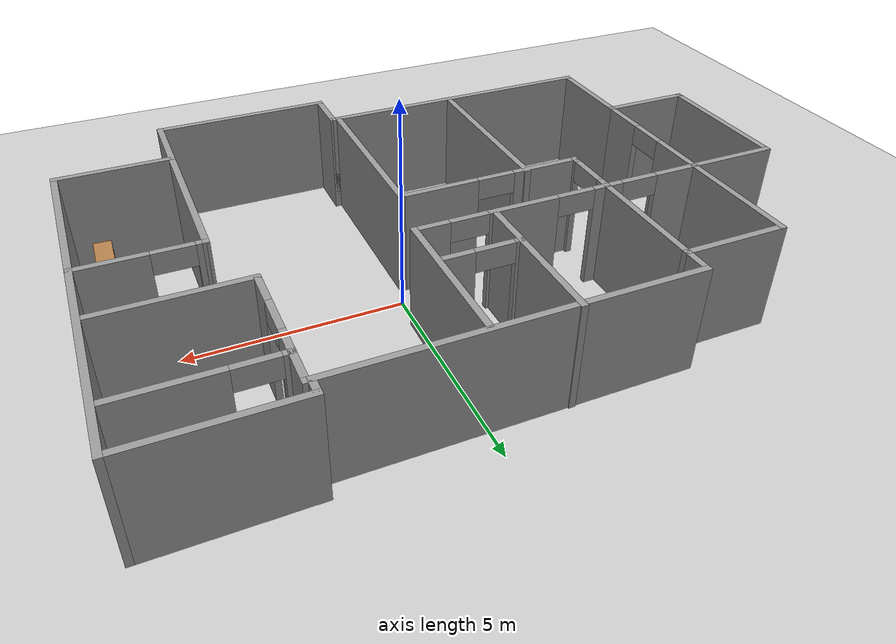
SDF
<sdf version="1.7">
 <world name="default">
  <light name="sun" type="directional">
   <pose>0 0 10 0 -0 0</pose>
   <diffuse>0.8 0.8 0.8 1</diffuse>
   <specular>0.2 0.2 0.2 1</specular>
   <attenuation>
    <range>1000</range>
    <constant>0.9</constant>
    <linear>0.01</linear>
    <quadratic>0.001</quadratic>
   </attenuation>
   <direction>-0.5 0.1 -0.9</direction>
   <spot><inner_angle>0</inner_angle><outer_angle>0</outer_angle><falloff>0</falloff></spot>
  </light>
  <model name="ground_plane">
   <static>1</static>
   <link name="link">
    <collision name="collision">
     <geometry><plane><normal>0 0 1</normal><size>100 100</size></plane></geometry>
     <surface>
      <contact><collide_bitmask>65535</collide_bitmask></contact>
      <friction><ode><mu>100</mu><mu2>50</mu2></ode></friction>
     </surface>
    </collision>
    <visual name="visual">
     <cast_shadows>0</cast_shadows>
     <geometry><plane><normal>0 0 1</normal><size>100 100</size></plane></geometry>
     <material>
      <script><uri>file://media/materials/scripts/gazebo.material</uri><name>Gazebo/Grey</name></script>
     </material>
    </visual>
   </link>
  </model>
  <gravity>0 0 -9.8</gravity>
  <magnetic_field>6e-06 2.3e-05 -4.2e-05</magnetic_field>
  <atmosphere type="adiabatic"/>
  <physics type="ode">
   <max_step_size>0.001</max_step_size>
   <real_time_factor>1</real_time_factor>
   <real_time_update_rate>1000</real_time_update_rate>
  </physics>
  <scene><ambient>0.4 0.4 0.4 1</ambient><background>0.7 0.7 0.7 1</background><shadows>1</shadows></scene>
  <spherical_coordinates>
   <surface_model>EARTH_WGS84</surface_model>
   <latitude_deg>0</latitude_deg>
   <longitude_deg>0</longitude_deg>
   <elevation>0</elevation>
   <heading_deg>0</heading_deg>
  </spherical_coordinates>
  <model name="Bookshelf_clone">
   <static>1</static>
   <link name="link">
    <inertial><mass>1</mass></inertial>
    <collision name="back">
     <pose>0 0.005 0.6 0 -0 0</pose>
     <geometry><box><size>0.9 0.01 1.2</size></box></geometry>
    </collision>
    <visual name="visual1">
     <pose>0 0.005 0.6 0 -0 0</pose>
     <geometry><box><size>0.9 0.01 1.2</size></box></geometry>
     <material>
      <diffuse>1 1 1 1</diffuse>
      <script><uri>file://media/materials/scripts/gazebo.material</uri><name>Gazebo/Wood</name></script>
      <pbr>
       <metal>
        <albedo_map>https://fuel.ignitionrobotics.org/1.0/openrobotics/models/bookshelf/3/files/bookshelf_diffuse.jpg</albedo_map>
       </metal>
      </pbr>
     </material>
    </visual>
    <collision name="left_side">
     <pose>0.45 -0.195 0.6 0 -0 0</pose>
     <geometry><box><size>0.02 0.4 1.2</size></box></geometry>
    </collision>
    <visual name="visual2">
     <pose>0.45 -0.195 0.6 0 -0 0</pose>
     <geometry><box><size>0.02 0.4 1.2</size></box></geometry>
     <material>
      <diffuse>1 1 1 1</diffuse>
      <script><uri>file://media/materials/scripts/gazebo.material</uri><name>Gazebo/Wood</name></script>
      <pbr>
       <metal>
        <albedo_map>https://fuel.ignitionrobotics.org/1.0/openrobotics/models/bookshelf/3/files/bookshelf_diffuse.jpg</albedo_map>
       </metal>
      </pbr>
     </material>
    </visual>
    <collision name="right_side">
     <pose>-0.45 -0.195 0.6 0 -0 0</pose>
     <geometry><box><size>0.02 0.4 1.2</size></box></geometry>
    </collision>
    <visual name="visual3">
     <pose>-0.45 -0.195 0.6 0 -0 0</pose>
     <geometry><box><size>0.02 0.4 1.2</size></box></geometry>
     <material>
      <diffuse>1 1 1 1</diffuse>
      <script><uri>file://media/materials/scripts/gazebo.material</uri><name>Gazebo/Wood</name></script>
      <pbr>
       <metal>
        <albedo_map>https://fuel.ignitionrobotics.org/1.0/openrobotics/models/bookshelf/3/files/bookshelf_diffuse.jpg</albedo_map>
       </metal>
      </pbr>
     </material>
    </visual>
    <collision name="bottom">
     <pose>0 -0.195 0.03 0 -0 0</pose>
     <geometry><box><size>0.88 0.4 0.06</size></box></geometry>
    </collision>
    <visual name="visual4">
     <pose>0 -0.195 0.03 0 -0 0</pose>
     <geometry><box><size>0.88 0.4 0.06</size></box></geometry>
     <material>
      <diffuse>1 1 1 1</diffuse>
      <script><uri>file://media/materials/scripts/gazebo.material</uri><name>Gazebo/Wood</name></script>
      <pbr>
       <metal>
        <albedo_map>https://fuel.ignitionrobotics.org/1.0/openrobotics/models/bookshelf/3/files/bookshelf_diffuse.jpg</albedo_map>
       </metal>
      </pbr>
     </material>
    </visual>
    <collision name="top">
     <pose>0 -0.195 1.19 0 -0 0</pose>
     <geometry><box><size>0.88 0.4 0.02</size></box></geometry>
    </collision>
    <visual name="visual5">
     <pose>0 -0.195 1.19 0 -0 0</pose>
     <geometry><box><size>0.88 0.4 0.02</size></box></geometry>
     <material>
      <diffuse>1 1 1 1</diffuse>
      <script><uri>file://media/materials/scripts/gazebo.material</uri><name>Gazebo/Wood</name></script>
      <pbr>
       <metal>
        <albedo_map>https://fuel.ignitionrobotics.org/1.0/openrobotics/models/bookshelf/3/files/bookshelf_diffuse.jpg</albedo_map>
       </metal>
      </pbr>
     </material>
    </visual>
    <collision name="low_shelf">
     <pose>0 -0.195 0.43 0 -0 0</pose>
     <geometry><box><size>0.88 0.4 0.02</size></box></geometry>
    </collision>
    <visual name="visual6">
     <pose>0 -0.195 0.43 0 -0 0</pose>
     <geometry><box><size>0.88 0.4 0.02</size></box></geometry>
     <material>
      <diffuse>1 1 1 1</diffuse>
      <script><uri>file://media/materials/scripts/gazebo.material</uri><name>Gazebo/Wood</name></script>
      <pbr>
       <metal>
        <albedo_map>https://fuel.ignitionrobotics.org/1.0/openrobotics/models/bookshelf/3/files/bookshelf_diffuse.jpg</albedo_map>
       </metal>
      </pbr>
     </material>
    </visual>
    <collision name="high_shelf">
     <pose>0 -0.195 0.8 0 -0 0</pose>
     <geometry><box><size>0.88 0.4 0.02</size></box></geometry>
    </collision>
    <visual name="visual7">
     <pose>0 -0.195 0.8 0 -0 0</pose>
     <geometry><box><size>0.88 0.4 0.02</size></box></geometry>
     <material>
      <diffuse>1 1 1 1</diffuse>
      <script><uri>file://media/materials/scripts/gazebo.material</uri><name>Gazebo/Wood</name></script>
      <pbr>
       <metal>
        <albedo_map>https://fuel.ignitionrobotics.org/1.0/openrobotics/models/bookshelf/3/files/bookshelf_diffuse.jpg</albedo_map>
       </metal>
      </pbr>
     </material>
    </visual>
   </link>
   <pose>6.51092 -1.05986 0 0 0 -1.5962</pose>
  </model>
  <model name="Bookshelf_clone_clone">
   <static>1</static>
   <link name="link">
    <inertial><mass>1</mass></inertial>
    <collision name="back">
     <pose>0 0.005 0.6 0 -0 0</pose>
     <geometry><box><size>0.9 0.01 1.2</size></box></geometry>
    </collision>
    <visual name="visual1">
     <pose>0 0.005 0.6 0 -0 0</pose>
     <geometry><box><size>0.9 0.01 1.2</size></box></geometry>
     <material>
      <diffuse>1 1 1 1</diffuse>
      <script><uri>file://media/materials/scripts/gazebo.material</uri><name>Gazebo/Wood</name></script>
      <pbr>
       <metal>
        <albedo_map>https://fuel.ignitionrobotics.org/1.0/openrobotics/models/bookshelf/3/files/bookshelf_diffuse.jpg</albedo_map>
       </metal>
      </pbr>
     </material>
    </visual>
    <collision name="left_side">
     <pose>0.45 -0.195 0.6 0 -0 0</pose>
     <geometry><box><size>0.02 0.4 1.2</size></box></geometry>
    </collision>
    <visual name="visual2">
     <pose>0.45 -0.195 0.6 0 -0 0</pose>
     <geometry><box><size>0.02 0.4 1.2</size></box></geometry>
     <material>
      <diffuse>1 1 1 1</diffuse>
      <script><uri>file://media/materials/scripts/gazebo.material</uri><name>Gazebo/Wood</name></script>
      <pbr>
       <metal>
        <albedo_map>https://fuel.ignitionrobotics.org/1.0/openrobotics/models/bookshelf/3/files/bookshelf_diffuse.jpg</albedo_map>
       </metal>
      </pbr>
     </material>
    </visual>
    <collision name="right_side">
     <pose>-0.45 -0.195 0.6 0 -0 0</pose>
     <geometry><box><size>0.02 0.4 1.2</size></box></geometry>
    </collision>
    <visual name="visual3">
     <pose>-0.45 -0.195 0.6 0 -0 0</pose>
     <geometry><box><size>0.02 0.4 1.2</size></box></geometry>
     <material>
      <diffuse>1 1 1 1</diffuse>
      <script><uri>file://media/materials/scripts/gazebo.material</uri><name>Gazebo/Wood</name></script>
      <pbr>
       <metal>
        <albedo_map>https://fuel.ignitionrobotics.org/1.0/openrobotics/models/bookshelf/3/files/bookshelf_diffuse.jpg</albedo_map>
       </metal>
      </pbr>
     </material>
    </visual>
    <collision name="bottom">
     <pose>0 -0.195 0.03 0 -0 0</pose>
     <geometry><box><size>0.88 0.4 0.06</size></box></geometry>
    </collision>
    <visual name="visual4">
     <pose>0 -0.195 0.03 0 -0 0</pose>
     <geometry><box><size>0.88 0.4 0.06</size></box></geometry>
     <material>
      <diffuse>1 1 1 1</diffuse>
      <script><uri>file://media/materials/scripts/gazebo.material</uri><name>Gazebo/Wood</name></script>
      <pbr>
       <metal>
        <albedo_map>https://fuel.ignitionrobotics.org/1.0/openrobotics/models/bookshelf/3/files/bookshelf_diffuse.jpg</albedo_map>
       </metal>
      </pbr>
     </material>
    </visual>
    <collision name="top">
     <pose>0 -0.195 1.19 0 -0 0</pose>
     <geometry><box><size>0.88 0.4 0.02</size></box></geometry>
    </collision>
    <visual name="visual5">
     <pose>0 -0.195 1.19 0 -0 0</pose>
     <geometry><box><size>0.88 0.4 0.02</size></box></geometry>
     <material>
      <diffuse>1 1 1 1</diffuse>
      <script><uri>file://media/materials/scripts/gazebo.material</uri><name>Gazebo/Wood</name></script>
      <pbr>
       <metal>
        <albedo_map>https://fuel.ignitionrobotics.org/1.0/openrobotics/models/bookshelf/3/files/bookshelf_diffuse.jpg</albedo_map>
       </metal>
      </pbr>
     </material>
    </visual>
    <collision name="low_shelf">
     <pose>0 -0.195 0.43 0 -0 0</pose>
     <geometry><box><size>0.88 0.4 0.02</size></box></geometry>
    </collision>
    <visual name="visual6">
     <pose>0 -0.195 0.43 0 -0 0</pose>
     <geometry><box><size>0.88 0.4 0.02</size></box></geometry>
     <material>
      <diffuse>1 1 1 1</diffuse>
      <script><uri>file://media/materials/scripts/gazebo.material</uri><name>Gazebo/Wood</name></script>
      <pbr>
       <metal>
        <albedo_map>https://fuel.ignitionrobotics.org/1.0/openrobotics/models/bookshelf/3/files/bookshelf_diffuse.jpg</albedo_map>
       </metal>
      </pbr>
     </material>
    </visual>
    <collision name="high_shelf">
     <pose>0 -0.195 0.8 0 -0 0</pose>
     <geometry><box><size>0.88 0.4 0.02</size></box></geometry>
    </collision>
    <visual name="visual7">
     <pose>0 -0.195 0.8 0 -0 0</pose>
     <geometry><box><size>0.88 0.4 0.02</size></box></geometry>
     <material>
      <diffuse>1 1 1 1</diffuse>
      <script><uri>file://media/materials/scripts/gazebo.material</uri><name>Gazebo/Wood</name></script>
      <pbr>
       <metal>
        <albedo_map>https://fuel.ignitionrobotics.org/1.0/openrobotics/models/bookshelf/3/files/bookshelf_diffuse.jpg</albedo_map>
       </metal>
      </pbr>
     </material>
    </visual>
   </link>
   <pose>6.18658 -1.98511 0 0 0 -1.5962</pose>
  </model>
  <model name="Bookshelf_clone_clone_0">
   <static>1</static>
   <link name="link">
    <inertial><mass>1</mass></inertial>
    <collision name="back">
     <pose>0 0.005 0.6 0 -0 0</pose>
     <geometry><box><size>0.9 0.01 1.2</size></box></geometry>
    </collision>
    <visual name="visual1">
     <pose>0 0.005 0.6 0 -0 0</pose>
     <geometry><box><size>0.9 0.01 1.2</size></box></geometry>
     <material>
      <diffuse>1 1 1 1</diffuse>
      <script><uri>file://media/materials/scripts/gazebo.material</uri><name>Gazebo/Wood</name></script>
      <pbr>
       <metal>
        <albedo_map>https://fuel.ignitionrobotics.org/1.0/openrobotics/models/bookshelf/3/files/bookshelf_diffuse.jpg</albedo_map>
       </metal>
      </pbr>
     </material>
    </visual>
    <collision name="left_side">
     <pose>0.45 -0.195 0.6 0 -0 0</pose>
     <geometry><box><size>0.02 0.4 1.2</size></box></geometry>
    </collision>
    <visual name="visual2">
     <pose>0.45 -0.195 0.6 0 -0 0</pose>
     <geometry><box><size>0.02 0.4 1.2</size></box></geometry>
     <material>
      <diffuse>1 1 1 1</diffuse>
      <script><uri>file://media/materials/scripts/gazebo.material</uri><name>Gazebo/Wood</name></script>
      <pbr>
       <metal>
        <albedo_map>https://fuel.ignitionrobotics.org/1.0/openrobotics/models/bookshelf/3/files/bookshelf_diffuse.jpg</albedo_map>
       </metal>
      </pbr>
     </material>
    </visual>
    <collision name="right_side">
     <pose>-0.45 -0.195 0.6 0 -0 0</pose>
     <geometry><box><size>0.02 0.4 1.2</size></box></geometry>
    </collision>
    <visual name="visual3">
     <pose>-0.45 -0.195 0.6 0 -0 0</pose>
     <geometry><box><size>0.02 0.4 1.2</size></box></geometry>
     <material>
      <diffuse>1 1 1 1</diffuse>
      <script><uri>file://media/materials/scripts/gazebo.material</uri><name>Gazebo/Wood</name></script>
      <pbr>
       <metal>
        <albedo_map>https://fuel.ignitionrobotics.org/1.0/openrobotics/models/bookshelf/3/files/bookshelf_diffuse.jpg</albedo_map>
       </metal>
      </pbr>
     </material>
    </visual>
    <collision name="bottom">
     <pose>0 -0.195 0.03 0 -0 0</pose>
     <geometry><box><size>0.88 0.4 0.06</size></box></geometry>
    </collision>
    <visual name="visual4">
     <pose>0 -0.195 0.03 0 -0 0</pose>
     <geometry><box><size>0.88 0.4 0.06</size></box></geometry>
     <material>
      <diffuse>1 1 1 1</diffuse>
      <script><uri>file://media/materials/scripts/gazebo.material</uri><name>Gazebo/Wood</name></script>
      <pbr>
       <metal>
        <albedo_map>https://fuel.ignitionrobotics.org/1.0/openrobotics/models/bookshelf/3/files/bookshelf_diffuse.jpg</albedo_map>
       </metal>
      </pbr>
     </material>
    </visual>
    <collision name="top">
     <pose>0 -0.195 1.19 0 -0 0</pose>
     <geometry><box><size>0.88 0.4 0.02</size></box></geometry>
    </collision>
    <visual name="visual5">
     <pose>0 -0.195 1.19 0 -0 0</pose>
     <geometry><box><size>0.88 0.4 0.02</size></box></geometry>
     <material>
      <diffuse>1 1 1 1</diffuse>
      <script><uri>file://media/materials/scripts/gazebo.material</uri><name>Gazebo/Wood</name></script>
      <pbr>
       <metal>
        <albedo_map>https://fuel.ignitionrobotics.org/1.0/openrobotics/models/bookshelf/3/files/bookshelf_diffuse.jpg</albedo_map>
       </metal>
      </pbr>
     </material>
    </visual>
    <collision name="low_shelf">
     <pose>0 -0.195 0.43 0 -0 0</pose>
     <geometry><box><size>0.88 0.4 0.02</size></box></geometry>
    </collision>
    <visual name="visual6">
     <pose>0 -0.195 0.43 0 -0 0</pose>
     <geometry><box><size>0.88 0.4 0.02</size></box></geometry>
     <material>
      <diffuse>1 1 1 1</diffuse>
      <script><uri>file://media/materials/scripts/gazebo.material</uri><name>Gazebo/Wood</name></script>
      <pbr>
       <metal>
        <albedo_map>https://fuel.ignitionrobotics.org/1.0/openrobotics/models/bookshelf/3/files/bookshelf_diffuse.jpg</albedo_map>
       </metal>
      </pbr>
     </material>
    </visual>
    <collision name="high_shelf">
     <pose>0 -0.195 0.8 0 -0 0</pose>
     <geometry><box><size>0.88 0.4 0.02</size></box></geometry>
    </collision>
    <visual name="visual7">
     <pose>0 -0.195 0.8 0 -0 0</pose>
     <geometry><box><size>0.88 0.4 0.02</size></box></geometry>
     <material>
      <diffuse>1 1 1 1</diffuse>
      <script><uri>file://media/materials/scripts/gazebo.material</uri><name>Gazebo/Wood</name></script>
      <pbr>
       <metal>
        <albedo_map>https://fuel.ignitionrobotics.org/1.0/openrobotics/models/bookshelf/3/files/bookshelf_diffuse.jpg</albedo_map>
       </metal>
      </pbr>
     </material>
    </visual>
   </link>
   <pose>6.16097 -2.89816 0 0 0 -1.5962</pose>
  </model>
  <model name="house_yintao03">
   <pose>-1.1825 -0.605754 0 0 -0 0</pose>
   <link name="Wall_0">
    <collision name="Wall_0_Collision">
     <geometry><box><size>7 0.15 2.5</size></box></geometry>
     <pose>0 0 1.25 0 -0 0</pose>
    </collision>
    <visual name="Wall_0_Visual">
     <pose>0 0 1.25 0 -0 0</pose>
     <geometry><box><size>7 0.15 2.5</size></box></geometry>
     <material>
      <script><uri>file://media/materials/scripts/gazebo.material</uri><name>Gazebo/Grey</name></script>
      <ambient>1 1 1 1</ambient>
     </material>
     <meta><layer>0</layer></meta>
    </visual>
    <pose>-2.3 -4.125 0 0 -0 0</pose>
   </link>
   <link name="Wall_1">
    <collision name="Wall_1_Collision">
     <geometry><box><size>1.25 0.15 2.5</size></box></geometry>
     <pose>0 0 1.25 0 -0 0</pose>
    </collision>
    <visual name="Wall_1_Visual">
     <pose>0 0 1.25 0 -0 0</pose>
     <geometry><box><size>1.25 0.15 2.5</size></box></geometry>
     <material>
      <script><uri>file://media/materials/scripts/gazebo.material</uri><name>Gazebo/Grey</name></script>
      <ambient>1 1 1 1</ambient>
     </material>
     <meta><layer>0</layer></meta>
    </visual>
    <pose>1.125 -4.675 0 0 -0 -1.5708</pose>
   </link>
   <link name="Wall_10">
    <collision name="Wall_10_Collision">
     <geometry><box><size>2.5 0.15 2.5</size></box></geometry>
     <pose>0 0 1.25 0 -0 0</pose>
    </collision>
    <visual name="Wall_10_Visual">
     <pose>0 0 1.25 0 -0 0</pose>
     <geometry><box><size>2.5 0.15 2.5</size></box></geometry>
     <material>
      <script><uri>file://media/materials/scripts/gazebo.material</uri><name>Gazebo/Grey</name></script>
      <ambient>1 1 1 1</ambient>
     </material>
     <meta><layer>0</layer></meta>
    </visual>
    <pose>-4.55 4.275 0 0 -0 3.14159</pose>
   </link>
   <link name="Wall_11">
    <collision name="Wall_11_Collision">
     <geometry><box><size>3 0.15 2.5</size></box></geometry>
     <pose>0 0 1.25 0 -0 0</pose>
    </collision>
    <visual name="Wall_11_Visual">
     <pose>0 0 1.25 0 -0 0</pose>
     <geometry><box><size>3 0.15 2.5</size></box></geometry>
     <material>
      <script><uri>file://media/materials/scripts/gazebo.material</uri><name>Gazebo/Grey</name></script>
      <ambient>1 1 1 1</ambient>
     </material>
     <meta><layer>0</layer></meta>
    </visual>
    <pose>-5.725 2.85 0 0 -0 -1.5708</pose>
   </link>
   <link name="Wall_12">
    <collision name="Wall_12_Collision">
     <geometry><box><size>2.25 0.15 2.5</size></box></geometry>
     <pose>0 0 1.25 0 -0 0</pose>
    </collision>
    <visual name="Wall_12_Visual">
     <pose>0 0 1.25 0 -0 0</pose>
     <geometry><box><size>2.25 0.15 2.5</size></box></geometry>
     <material>
      <script><uri>file://media/materials/scripts/gazebo.material</uri><name>Gazebo/Grey</name></script>
      <ambient>1 1 1 1</ambient>
     </material>
     <meta><layer>0</layer></meta>
    </visual>
    <pose>-6.775 1.425 0 0 -0 3.14159</pose>
   </link>
   <link name="Wall_13">
    <collision name="Wall_13_Collision">
     <geometry><box><size>3.5 0.15 2.5</size></box></geometry>
     <pose>0 0 1.25 0 -0 0</pose>
    </collision>
    <visual name="Wall_13_Visual">
     <pose>0 0 1.25 0 -0 0</pose>
     <geometry><box><size>3.5 0.15 2.5</size></box></geometry>
     <material>
      <script><uri>file://media/materials/scripts/gazebo.material</uri><name>Gazebo/Grey</name></script>
      <ambient>1 1 1 1</ambient>
     </material>
     <meta><layer>0</layer></meta>
    </visual>
    <pose>-7.825 -0.25 0 0 -0 -1.5708</pose>
   </link>
   <link name="Wall_14">
    <collision name="Wall_14_Collision">
     <geometry><box><size>2.25 0.15 2.5</size></box></geometry>
     <pose>0 0 1.25 0 -0 0</pose>
    </collision>
    <visual name="Wall_14_Visual">
     <pose>0 0 1.25 0 -0 0</pose>
     <geometry><box><size>2.25 0.15 2.5</size></box></geometry>
     <material>
      <script><uri>file://media/materials/scripts/gazebo.material</uri><name>Gazebo/Grey</name></script>
      <ambient>1 1 1 1</ambient>
     </material>
     <meta><layer>0</layer></meta>
    </visual>
    <pose>-6.775 -1.925 0 0 -0 0</pose>
   </link>
   <link name="Wall_15">
    <collision name="Wall_15_Collision">
     <geometry><box><size>2.35 0.15 2.5</size></box></geometry>
     <pose>0 0 1.25 0 -0 0</pose>
    </collision>
    <visual name="Wall_15_Visual">
     <pose>0 0 1.25 0 -0 0</pose>
     <geometry><box><size>2.35 0.15 2.5</size></box></geometry>
     <material>
      <script><uri>file://media/materials/scripts/gazebo.material</uri><name>Gazebo/Grey</name></script>
      <ambient>1 1 1 1</ambient>
     </material>
     <meta><layer>0</layer></meta>
    </visual>
    <pose>-5.725 -3.025 0 0 -0 -1.5708</pose>
   </link>
   <link name="Wall_17">
    <pose>-5.725 -0.25 0 0 -0 -1.5708</pose>
    <visual name="Wall_17_Visual_0">
     <pose>-1.04996 0 1.25 0 -0 0</pose>
     <geometry><box><size>1.40008 0.15 2.5</size></box></geometry>
     <material>
      <script><uri>file://media/materials/scripts/gazebo.material</uri><name>Gazebo/Grey</name></script>
      <ambient>1 1 1 1</ambient>
     </material>
     <meta><layer>0</layer></meta>
    </visual>
    <collision name="Wall_17_Collision_0">
     <geometry><box><size>1.40008 0.15 2.5</size></box></geometry>
     <pose>-1.04996 0 1.25 0 -0 0</pose>
    </collision>
    <visual name="Wall_17_Visual_1">
     <pose>1.15004 0 1.25 0 -0 0</pose>
     <geometry><box><size>1.19992 0.15 2.5</size></box></geometry>
     <material>
      <script><uri>file://media/materials/scripts/gazebo.material</uri><name>Gazebo/Grey</name></script>
      <ambient>1 1 1 1</ambient>
     </material>
     <meta><layer>0</layer></meta>
    </visual>
    <collision name="Wall_17_Collision_1">
     <geometry><box><size>1.19992 0.15 2.5</size></box></geometry>
     <pose>1.15004 0 1.25 0 -0 0</pose>
    </collision>
    <visual name="Wall_17_Visual_2">
     <pose>0.100077 0 2.25 0 -0 0</pose>
     <geometry><box><size>0.9 0.15 0.5</size></box></geometry>
     <material>
      <script><uri>file://media/materials/scripts/gazebo.material</uri><name>Gazebo/Grey</name></script>
      <ambient>1 1 1 1</ambient>
     </material>
     <meta><layer>0</layer></meta>
    </visual>
    <collision name="Wall_17_Collision_2">
     <geometry><box><size>0.9 0.15 0.5</size></box></geometry>
     <pose>0.100077 0 2.25 0 -0 0</pose>
    </collision>
   </link>
   <link name="Wall_2">
    <collision name="Wall_2_Collision">
     <geometry><box><size>4.25 0.15 2.5</size></box></geometry>
     <pose>0 0 1.25 0 -0 0</pose>
    </collision>
    <visual name="Wall_2_Visual">
     <pose>0 0 1.25 0 -0 0</pose>
     <geometry><box><size>4.25 0.15 2.5</size></box></geometry>
     <material>
      <script><uri>file://media/materials/scripts/gazebo.material</uri><name>Gazebo/Grey</name></script>
      <ambient>1 1 1 1</ambient>
     </material>
     <meta><layer>0</layer></meta>
    </visual>
    <pose>3.175 -5.225 0 0 -0 0</pose>
   </link>
   <link name="Wall_24">
    <pose>-4.55 1.425 0 0 -0 0</pose>
    <visual name="Wall_24_Visual_0">
     <pose>-0.684922 0 1.25 0 -0 0</pose>
     <geometry><box><size>1.13016 0.15 2.5</size></box></geometry>
     <material>
      <script><uri>file://media/materials/scripts/gazebo.material</uri><name>Gazebo/Grey</name></script>
      <ambient>1 1 1 1</ambient>
     </material>
     <meta><layer>0</layer></meta>
    </visual>
    <collision name="Wall_24_Collision_0">
     <geometry><box><size>1.13016 0.15 2.5</size></box></geometry>
     <pose>-0.684922 0 1.25 0 -0 0</pose>
    </collision>
    <visual name="Wall_24_Visual_1">
     <pose>1.01508 0 1.25 0 -0 0</pose>
     <geometry><box><size>0.469844 0.15 2.5</size></box></geometry>
     <material>
      <script><uri>file://media/materials/scripts/gazebo.material</uri><name>Gazebo/Grey</name></script>
      <ambient>1 1 1 1</ambient>
     </material>
     <meta><layer>0</layer></meta>
    </visual>
    <collision name="Wall_24_Collision_1">
     <geometry><box><size>0.469844 0.15 2.5</size></box></geometry>
     <pose>1.01508 0 1.25 0 -0 0</pose>
    </collision>
    <visual name="Wall_24_Visual_2">
     <pose>0.330156 0 2.25 0 -0 0</pose>
     <geometry><box><size>0.9 0.15 0.5</size></box></geometry>
     <material>
      <script><uri>file://media/materials/scripts/gazebo.material</uri><name>Gazebo/Grey</name></script>
      <ambient>1 1 1 1</ambient>
     </material>
     <meta><layer>0</layer></meta>
    </visual>
    <collision name="Wall_24_Collision_2">
     <geometry><box><size>0.9 0.15 0.5</size></box></geometry>
     <pose>0.330156 0 2.25 0 -0 0</pose>
    </collision>
   </link>
   <link name="Wall_25">
    <collision name="Wall_25_Collision">
     <geometry><box><size>3 0.15 2.5</size></box></geometry>
     <pose>0 0 1.25 0 -0 0</pose>
    </collision>
    <visual name="Wall_25_Visual">
     <pose>0 0 1.25 0 -0 0</pose>
     <geometry><box><size>3 0.15 2.5</size></box></geometry>
     <material>
      <script><uri>file://media/materials/scripts/gazebo.material</uri><name>Gazebo/Grey</name></script>
      <ambient>1 1 1 1</ambient>
     </material>
     <meta><layer>0</layer></meta>
    </visual>
    <pose>-3.375 2.85 0 0 -0 1.5708</pose>
   </link>
   <link name="Wall_27">
    <pose>-1.075 1.425 0 0 -0 0</pose>
    <visual name="Wall_27_Visual_0">
     <pose>-2.16842 0 1.25 0 -0 0</pose>
     <geometry><box><size>0.413156 0.15 2.5</size></box></geometry>
     <material>
      <script><uri>file://media/materials/scripts/gazebo.material</uri><name>Gazebo/Grey</name></script>
      <ambient>1 1 1 1</ambient>
     </material>
     <meta><layer>0</layer></meta>
    </visual>
    <collision name="Wall_27_Collision_0">
     <geometry><box><size>0.413156 0.15 2.5</size></box></geometry>
     <pose>-2.16842 0 1.25 0 -0 0</pose>
    </collision>
    <visual name="Wall_27_Visual_1">
     <pose>-0.223844 0 1.25 0 -0 0</pose>
     <geometry><box><size>1.676 0.15 2.5</size></box></geometry>
     <material>
      <script><uri>file://media/materials/scripts/gazebo.material</uri><name>Gazebo/Grey</name></script>
      <ambient>1 1 1 1</ambient>
     </material>
     <meta><layer>0</layer></meta>
    </visual>
    <collision name="Wall_27_Collision_1">
     <geometry><box><size>1.676 0.15 2.5</size></box></geometry>
     <pose>-0.223844 0 1.25 0 -0 0</pose>
    </collision>
    <visual name="Wall_27_Visual_2">
     <pose>1.94458 0 1.25 0 -0 0</pose>
     <geometry><box><size>0.860844 0.15 2.5</size></box></geometry>
     <material>
      <script><uri>file://media/materials/scripts/gazebo.material</uri><name>Gazebo/Grey</name></script>
      <ambient>1 1 1 1</ambient>
     </material>
     <meta><layer>0</layer></meta>
    </visual>
    <collision name="Wall_27_Collision_2">
     <geometry><box><size>0.860844 0.15 2.5</size></box></geometry>
     <pose>1.94458 0 1.25 0 -0 0</pose>
    </collision>
    <visual name="Wall_27_Visual_3">
     <pose>-1.51184 0 2.25 0 -0 0</pose>
     <geometry><box><size>0.9 0.15 0.5</size></box></geometry>
     <material>
      <script><uri>file://media/materials/scripts/gazebo.material</uri><name>Gazebo/Grey</name></script>
      <ambient>1 1 1 1</ambient>
     </material>
     <meta><layer>0</layer></meta>
    </visual>
    <collision name="Wall_27_Collision_3">
     <geometry><box><size>0.9 0.15 0.5</size></box></geometry>
     <pose>-1.51184 0 2.25 0 -0 0</pose>
    </collision>
    <visual name="Wall_27_Visual_4">
     <pose>1.06416 0 2.25 0 -0 0</pose>
     <geometry><box><size>0.9 0.15 0.5</size></box></geometry>
     <material>
      <script><uri>file://media/materials/scripts/gazebo.material</uri><name>Gazebo/Grey</name></script>
      <ambient>1 1 1 1</ambient>
     </material>
     <meta><layer>0</layer></meta>
    </visual>
    <collision name="Wall_27_Collision_4">
     <geometry><box><size>0.9 0.15 0.5</size></box></geometry>
     <pose>1.06416 0 2.25 0 -0 0</pose>
    </collision>
   </link>
   <link name="Wall_28">
    <collision name="Wall_28_Collision">
     <geometry><box><size>3.5 0.15 2.5</size></box></geometry>
     <pose>0 0 1.25 0 -0 0</pose>
    </collision>
    <visual name="Wall_28_Visual">
     <pose>0 0 1.25 0 -0 0</pose>
     <geometry><box><size>3.5 0.15 2.5</size></box></geometry>
     <material>
      <script><uri>file://media/materials/scripts/gazebo.material</uri><name>Gazebo/Grey</name></script>
      <ambient>1 1 1 1</ambient>
     </material>
     <meta><layer>0</layer></meta>
    </visual>
    <pose>1.225 3.1 0 0 -0 1.5708</pose>
   </link>
   <link name="Wall_3">
    <collision name="Wall_3_Collision">
     <geometry><box><size>1.75 0.15 2.5</size></box></geometry>
     <pose>0 0 1.25 0 -0 0</pose>
    </collision>
    <visual name="Wall_3_Visual">
     <pose>0 0 1.25 0 -0 0</pose>
     <geometry><box><size>1.75 0.15 2.5</size></box></geometry>
     <material>
      <script><uri>file://media/materials/scripts/gazebo.material</uri><name>Gazebo/Grey</name></script>
      <ambient>1 1 1 1</ambient>
     </material>
     <meta><layer>0</layer></meta>
    </visual>
    <pose>5.225 -4.425 0 0 -0 1.5708</pose>
   </link>
   <link name="Wall_30">
    <collision name="Wall_30_Collision">
     <geometry><box><size>3.5 0.15 2.5</size></box></geometry>
     <pose>0 0 1.25 0 -0 0</pose>
    </collision>
    <visual name="Wall_30_Visual">
     <pose>0 0 1.25 0 -0 0</pose>
     <geometry><box><size>3.5 0.15 2.5</size></box></geometry>
     <material>
      <script><uri>file://media/materials/scripts/gazebo.material</uri><name>Gazebo/Grey</name></script>
      <ambient>1 1 1 1</ambient>
     </material>
     <meta><layer>0</layer></meta>
    </visual>
    <pose>-0.603372 3.22772 0 0 -0 -1.5708</pose>
   </link>
   <link name="Wall_32">
    <collision name="Wall_32_Collision">
     <geometry><box><size>0.25 0.15 2.5</size></box></geometry>
     <pose>0 0 1.25 0 -0 0</pose>
    </collision>
    <visual name="Wall_32_Visual">
     <pose>0 0 1.25 0 -0 0</pose>
     <geometry><box><size>0.25 0.15 2.5</size></box></geometry>
     <material>
      <script><uri>file://media/materials/scripts/gazebo.material</uri><name>Gazebo/Grey</name></script>
      <ambient>1 1 1 1</ambient>
     </material>
     <meta><layer>0</layer></meta>
    </visual>
    <pose>4.525 4.875 0 0 -0 0</pose>
   </link>
   <link name="Wall_33">
    <pose>4.575 3.325 0 0 -0 -1.5708</pose>
    <visual name="Wall_33_Visual_0">
     <pose>-0.878444 0 1.25 0 -0 0</pose>
     <geometry><box><size>1.49311 0.15 2.5</size></box></geometry>
     <material>
      <script><uri>file://media/materials/scripts/gazebo.material</uri><name>Gazebo/Grey</name></script>
      <ambient>1 1 1 1</ambient>
     </material>
     <meta><layer>0</layer></meta>
    </visual>
    <collision name="Wall_33_Collision_0">
     <geometry><box><size>1.49311 0.15 2.5</size></box></geometry>
     <pose>-0.878444 0 1.25 0 -0 0</pose>
    </collision>
    <visual name="Wall_33_Visual_1">
     <pose>1.19656 0 1.25 0 -0 0</pose>
     <geometry><box><size>0.856889 0.15 2.5</size></box></geometry>
     <material>
      <script><uri>file://media/materials/scripts/gazebo.material</uri><name>Gazebo/Grey</name></script>
      <ambient>1 1 1 1</ambient>
     </material>
     <meta><layer>0</layer></meta>
    </visual>
    <collision name="Wall_33_Collision_1">
     <geometry><box><size>0.856889 0.15 2.5</size></box></geometry>
     <pose>1.19656 0 1.25 0 -0 0</pose>
    </collision>
    <visual name="Wall_33_Visual_2">
     <pose>0.318111 0 2.25 0 -0 0</pose>
     <geometry><box><size>0.9 0.15 0.5</size></box></geometry>
     <material>
      <script><uri>file://media/materials/scripts/gazebo.material</uri><name>Gazebo/Grey</name></script>
      <ambient>1 1 1 1</ambient>
     </material>
     <meta><layer>0</layer></meta>
    </visual>
    <collision name="Wall_33_Collision_2">
     <geometry><box><size>0.9 0.15 0.5</size></box></geometry>
     <pose>0.318111 0 2.25 0 -0 0</pose>
    </collision>
   </link>
   <link name="Wall_34">
    <collision name="Wall_34_Collision">
     <geometry><box><size>3.25 0.15 2.5</size></box></geometry>
     <pose>0 0 1.25 0 -0 0</pose>
    </collision>
    <visual name="Wall_34_Visual">
     <pose>0 0 1.25 0 -0 0</pose>
     <geometry><box><size>3.25 0.15 2.5</size></box></geometry>
     <material>
      <script><uri>file://media/materials/scripts/gazebo.material</uri><name>Gazebo/Grey</name></script>
      <ambient>1 1 1 1</ambient>
     </material>
     <meta><layer>0</layer></meta>
    </visual>
    <pose>6.125 1.775 0 0 -0 0</pose>
   </link>
   <link name="Wall_36">
    <pose>6.5164 0.181131 0 0 -0 3.14159</pose>
    <visual name="Wall_36_Visual_0">
     <pose>-0.587618 0 1.25 0 -0 0</pose>
     <geometry><box><size>1.57476 0.15 2.5</size></box></geometry>
     <material>
      <script><uri>file://media/materials/scripts/gazebo.material</uri><name>Gazebo/Grey</name></script>
      <ambient>1 1 1 1</ambient>
     </material>
     <meta><layer>0</layer></meta>
    </visual>
    <collision name="Wall_36_Collision_0">
     <geometry><box><size>1.57476 0.15 2.5</size></box></geometry>
     <pose>-0.587618 0 1.25 0 -0 0</pose>
    </collision>
    <visual name="Wall_36_Visual_1">
     <pose>1.23738 0 1.25 0 -0 0</pose>
     <geometry><box><size>0.275236 0.15 2.5</size></box></geometry>
     <material>
      <script><uri>file://media/materials/scripts/gazebo.material</uri><name>Gazebo/Grey</name></script>
      <ambient>1 1 1 1</ambient>
     </material>
     <meta><layer>0</layer></meta>
    </visual>
    <collision name="Wall_36_Collision_1">
     <geometry><box><size>0.275236 0.15 2.5</size></box></geometry>
     <pose>1.23738 0 1.25 0 -0 0</pose>
    </collision>
    <visual name="Wall_36_Visual_2">
     <pose>0.649764 0 2.25 0 -0 0</pose>
     <geometry><box><size>0.9 0.15 0.5</size></box></geometry>
     <material>
      <script><uri>file://media/materials/scripts/gazebo.material</uri><name>Gazebo/Grey</name></script>
      <ambient>1 1 1 1</ambient>
     </material>
     <meta><layer>0</layer></meta>
    </visual>
    <collision name="Wall_36_Collision_2">
     <geometry><box><size>0.9 0.15 0.5</size></box></geometry>
     <pose>0.649764 0 2.25 0 -0 0</pose>
    </collision>
   </link>
   <link name="Wall_37">
    <collision name="Wall_37_Collision">
     <geometry><box><size>3.95614 0.15 2.5</size></box></geometry>
     <pose>0 0 1.25 0 -0 0</pose>
    </collision>
    <visual name="Wall_37_Visual">
     <pose>0 0 1.25 0 -0 0</pose>
     <geometry><box><size>3.95614 0.15 2.5</size></box></geometry>
     <material>
      <script><uri>file://media/materials/scripts/gazebo.material</uri><name>Gazebo/Grey</name></script>
      <ambient>1 1 1 1</ambient>
     </material>
     <meta><layer>0</layer></meta>
    </visual>
    <pose>5.2207 -1.72193 0 0 -0 -1.56854</pose>
   </link>
   <link name="Wall_39">
    <pose>-3.375 0.75 0 0 -0 -1.5708</pose>
    <visual name="Wall_39_Visual_0">
     <pose>-0.567461 0 1.25 0 -0 0</pose>
     <geometry><box><size>0.365077 0.15 2.5</size></box></geometry>
     <material>
      <script><uri>file://media/materials/scripts/gazebo.material</uri><name>Gazebo/Grey</name></script>
      <ambient>1 1 1 1</ambient>
     </material>
     <meta><layer>0</layer></meta>
    </visual>
    <collision name="Wall_39_Collision_0">
     <geometry><box><size>0.365077 0.15 2.5</size></box></geometry>
     <pose>-0.567461 0 1.25 0 -0 0</pose>
    </collision>
    <visual name="Wall_39_Visual_1">
     <pose>0.632539 0 1.25 0 -0 0</pose>
     <geometry><box><size>0.234923 0.15 2.5</size></box></geometry>
     <material>
      <script><uri>file://media/materials/scripts/gazebo.material</uri><name>Gazebo/Grey</name></script>
      <ambient>1 1 1 1</ambient>
     </material>
     <meta><layer>0</layer></meta>
    </visual>
    <collision name="Wall_39_Collision_1">
     <geometry><box><size>0.234923 0.15 2.5</size></box></geometry>
     <pose>0.632539 0 1.25 0 -0 0</pose>
    </collision>
    <visual name="Wall_39_Visual_2">
     <pose>0.065077 0 2.25 0 -0 0</pose>
     <geometry><box><size>0.9 0.15 0.5</size></box></geometry>
     <material>
      <script><uri>file://media/materials/scripts/gazebo.material</uri><name>Gazebo/Grey</name></script>
      <ambient>1 1 1 1</ambient>
     </material>
     <meta><layer>0</layer></meta>
    </visual>
    <collision name="Wall_39_Collision_2">
     <geometry><box><size>0.9 0.15 0.5</size></box></geometry>
     <pose>0.065077 0 2.25 0 -0 0</pose>
    </collision>
   </link>
   <link name="Wall_4">
    <collision name="Wall_4_Collision">
     <geometry><box><size>2.75 0.15 2.5</size></box></geometry>
     <pose>0 0 1.25 0 -0 0</pose>
    </collision>
    <visual name="Wall_4_Visual">
     <pose>0 0 1.25 0 -0 0</pose>
     <geometry><box><size>2.75 0.15 2.5</size></box></geometry>
     <material>
      <script><uri>file://media/materials/scripts/gazebo.material</uri><name>Gazebo/Grey</name></script>
      <ambient>1 1 1 1</ambient>
     </material>
     <meta><layer>0</layer></meta>
    </visual>
    <pose>6.525 -3.625 0 0 -0 0</pose>
   </link>
   <link name="Wall_44">
    <pose>-1.2 0.075 0 0 -0 0</pose>
    <visual name="Wall_44_Visual_0">
     <pose>-1.41092 0 1.25 0 -0 0</pose>
     <geometry><box><size>1.67816 0.15 2.5</size></box></geometry>
     <material>
      <script><uri>file://media/materials/scripts/gazebo.material</uri><name>Gazebo/Grey</name></script>
      <ambient>1 1 1 1</ambient>
     </material>
     <meta><layer>0</layer></meta>
    </visual>
    <collision name="Wall_44_Collision_0">
     <geometry><box><size>1.67816 0.15 2.5</size></box></geometry>
     <pose>-1.41092 0 1.25 0 -0 0</pose>
    </collision>
    <visual name="Wall_44_Visual_1">
     <pose>1.28908 0 1.25 0 -0 0</pose>
     <geometry><box><size>1.92184 0.15 2.5</size></box></geometry>
     <material>
      <script><uri>file://media/materials/scripts/gazebo.material</uri><name>Gazebo/Grey</name></script>
      <ambient>1 1 1 1</ambient>
     </material>
     <meta><layer>0</layer></meta>
    </visual>
    <collision name="Wall_44_Collision_1">
     <geometry><box><size>1.92184 0.15 2.5</size></box></geometry>
     <pose>1.28908 0 1.25 0 -0 0</pose>
    </collision>
    <visual name="Wall_44_Visual_2">
     <pose>-0.121844 0 2.25 0 -0 0</pose>
     <geometry><box><size>0.9 0.15 0.5</size></box></geometry>
     <material>
      <script><uri>file://media/materials/scripts/gazebo.material</uri><name>Gazebo/Grey</name></script>
      <ambient>1 1 1 1</ambient>
     </material>
     <meta><layer>0</layer></meta>
    </visual>
    <collision name="Wall_44_Collision_2">
     <geometry><box><size>0.9 0.15 0.5</size></box></geometry>
     <pose>-0.121844 0 2.25 0 -0 0</pose>
    </collision>
   </link>
   <link name="Wall_45">
    <collision name="Wall_45_Collision">
     <geometry><box><size>4.25 0.15 2.5</size></box></geometry>
     <pose>0 0 1.25 0 -0 0</pose>
    </collision>
    <visual name="Wall_45_Visual">
     <pose>0 0 1.25 0 -0 0</pose>
     <geometry><box><size>4.25 0.15 2.5</size></box></geometry>
     <material>
      <script><uri>file://media/materials/scripts/gazebo.material</uri><name>Gazebo/Grey</name></script>
      <ambient>1 1 1 1</ambient>
     </material>
     <meta><layer>0</layer></meta>
    </visual>
    <pose>0.974999 -1.975 0 0 -0 -1.5708</pose>
   </link>
   <link name="Wall_47">
    <collision name="Wall_47_Collision">
     <geometry><box><size>4.25 0.15 2.5</size></box></geometry>
     <pose>0 0 1.25 0 -0 0</pose>
    </collision>
    <visual name="Wall_47_Visual">
     <pose>0 0 1.25 0 -0 0</pose>
     <geometry><box><size>4.25 0.15 2.5</size></box></geometry>
     <material>
      <script><uri>file://media/materials/scripts/gazebo.material</uri><name>Gazebo/Grey</name></script>
      <ambient>1 1 1 1</ambient>
     </material>
     <meta><layer>0</layer></meta>
    </visual>
    <pose>-2.087 -1.93294 0 0 -0 -1.5708</pose>
   </link>
   <link name="Wall_5">
    <collision name="Wall_5_Collision">
     <geometry><box><size>9 0.15 2.5</size></box></geometry>
     <pose>0 0 1.25 0 -0 0</pose>
    </collision>
    <visual name="Wall_5_Visual">
     <pose>0 0 1.25 0 -0 0</pose>
     <geometry><box><size>9 0.15 2.5</size></box></geometry>
     <material>
      <script><uri>file://media/materials/scripts/gazebo.material</uri><name>Gazebo/Grey</name></script>
      <ambient>1 1 1 1</ambient>
     </material>
     <meta><layer>0</layer></meta>
    </visual>
    <pose>7.825 0.8 0 0 -0 1.5708</pose>
   </link>
   <link name="Wall_54">
    <pose>0.330179 2.59989 0 0 -0 0</pose>
    <visual name="Wall_54_Visual_0">
     <pose>-0.879911 0 1.25 0 -0 0</pose>
     <geometry><box><size>0.179178 0.15 2.5</size></box></geometry>
     <material>
      <script><uri>file://media/materials/scripts/gazebo.material</uri><name>Gazebo/Grey</name></script>
      <ambient>1 1 1 1</ambient>
     </material>
     <meta><layer>0</layer></meta>
    </visual>
    <collision name="Wall_54_Collision_0">
     <geometry><box><size>0.179178 0.15 2.5</size></box></geometry>
     <pose>-0.879911 0 1.25 0 -0 0</pose>
    </collision>
    <visual name="Wall_54_Visual_1">
     <pose>0.539589 0 1.25 0 -0 0</pose>
     <geometry><box><size>0.859822 0.15 2.5</size></box></geometry>
     <material>
      <script><uri>file://media/materials/scripts/gazebo.material</uri><name>Gazebo/Grey</name></script>
      <ambient>1 1 1 1</ambient>
     </material>
     <meta><layer>0</layer></meta>
    </visual>
    <collision name="Wall_54_Collision_1">
     <geometry><box><size>0.859822 0.15 2.5</size></box></geometry>
     <pose>0.539589 0 1.25 0 -0 0</pose>
    </collision>
    <visual name="Wall_54_Visual_2">
     <pose>-0.340322 0 2.25 0 -0 0</pose>
     <geometry><box><size>0.9 0.15 0.5</size></box></geometry>
     <material>
      <script><uri>file://media/materials/scripts/gazebo.material</uri><name>Gazebo/Grey</name></script>
      <ambient>1 1 1 1</ambient>
     </material>
     <meta><layer>0</layer></meta>
    </visual>
    <collision name="Wall_54_Collision_2">
     <geometry><box><size>0.9 0.15 0.5</size></box></geometry>
     <pose>-0.340322 0 2.25 0 -0 0</pose>
    </collision>
   </link>
   <link name="Wall_58">
    <pose>6.19818 4.09889 0 0 -0 0</pose>
    <visual name="Wall_58_Visual_0">
     <pose>-1.57917 0 1.25 0 -0 0</pose>
     <geometry><box><size>0.244659 0.15 2.5</size></box></geometry>
     <material>
      <script><uri>file://media/materials/scripts/gazebo.material</uri><name>Gazebo/Grey</name></script>
      <ambient>1 1 1 1</ambient>
     </material>
     <meta><layer>0</layer></meta>
    </visual>
    <collision name="Wall_58_Collision_0">
     <geometry><box><size>0.244659 0.15 2.5</size></box></geometry>
     <pose>-1.57917 0 1.25 0 -0 0</pose>
    </collision>
    <visual name="Wall_58_Visual_1">
     <pose>0.57233 0 1.25 0 -0 0</pose>
     <geometry><box><size>2.25834 0.15 2.5</size></box></geometry>
     <material>
      <script><uri>file://media/materials/scripts/gazebo.material</uri><name>Gazebo/Grey</name></script>
      <ambient>1 1 1 1</ambient>
     </material>
     <meta><layer>0</layer></meta>
    </visual>
    <collision name="Wall_58_Collision_1">
     <geometry><box><size>2.25834 0.15 2.5</size></box></geometry>
     <pose>0.57233 0 1.25 0 -0 0</pose>
    </collision>
    <visual name="Wall_58_Visual_2">
     <pose>-1.00684 0 2.25 0 -0 0</pose>
     <geometry><box><size>0.9 0.15 0.5</size></box></geometry>
     <material>
      <script><uri>file://media/materials/scripts/gazebo.material</uri><name>Gazebo/Grey</name></script>
      <ambient>1 1 1 1</ambient>
     </material>
     <meta><layer>0</layer></meta>
    </visual>
    <collision name="Wall_58_Collision_2">
     <geometry><box><size>0.9 0.15 0.5</size></box></geometry>
     <pose>-1.00684 0 2.25 0 -0 0</pose>
    </collision>
   </link>
   <link name="Wall_6">
    <collision name="Wall_6_Collision">
     <geometry><box><size>3.5 0.15 2.5</size></box></geometry>
     <pose>0 0 1.25 0 -0 0</pose>
    </collision>
    <visual name="Wall_6_Visual">
     <pose>0 0 1.25 0 -0 0</pose>
     <geometry><box><size>3.5 0.15 2.5</size></box></geometry>
     <material>
      <script><uri>file://media/materials/scripts/gazebo.material</uri><name>Gazebo/Grey</name></script>
      <ambient>1 1 1 1</ambient>
     </material>
     <meta><layer>0</layer></meta>
    </visual>
    <pose>6.15 5.225 0 0 -0 3.14159</pose>
   </link>
   <link name="Wall_7">
    <collision name="Wall_7_Collision">
     <geometry><box><size>0.5 0.15 2.5</size></box></geometry>
     <pose>0 0 1.25 0 -0 0</pose>
    </collision>
    <visual name="Wall_7_Visual">
     <pose>0 0 1.25 0 -0 0</pose>
     <geometry><box><size>0.5 0.15 2.5</size></box></geometry>
     <material>
      <script><uri>file://media/materials/scripts/gazebo.material</uri><name>Gazebo/Grey</name></script>
      <ambient>1 1 1 1</ambient>
     </material>
     <meta><layer>0</layer></meta>
    </visual>
    <pose>4.475 5.05 0 0 -0 -1.5708</pose>
   </link>
   <link name="Wall_8">
    <collision name="Wall_8_Collision">
     <geometry><box><size>8 0.15 2.5</size></box></geometry>
     <pose>0 0 1.25 0 -0 0</pose>
    </collision>
    <visual name="Wall_8_Visual">
     <pose>0 0 1.25 0 -0 0</pose>
     <geometry><box><size>8 0.15 2.5</size></box></geometry>
     <material>
      <script><uri>file://media/materials/scripts/gazebo.material</uri><name>Gazebo/Grey</name></script>
      <ambient>1 1 1 1</ambient>
     </material>
     <meta><layer>0</layer></meta>
    </visual>
    <pose>0.549999 4.875 0 0 -0 3.14159</pose>
   </link>
   <link name="Wall_9">
    <collision name="Wall_9_Collision">
     <geometry><box><size>0.75 0.15 2.5</size></box></geometry>
     <pose>0 0 1.25 0 -0 0</pose>
    </collision>
    <visual name="Wall_9_Visual">
     <pose>0 0 1.25 0 -0 0</pose>
     <geometry><box><size>0.75 0.15 2.5</size></box></geometry>
     <material>
      <script><uri>file://media/materials/scripts/gazebo.material</uri><name>Gazebo/Grey</name></script>
      <ambient>1 1 1 1</ambient>
     </material>
     <meta><layer>0</layer></meta>
    </visual>
    <pose>-3.375 4.575 0 0 -0 -1.5708</pose>
   </link>
   <static>1</static>
  </model>
 </world>
</sdf>
